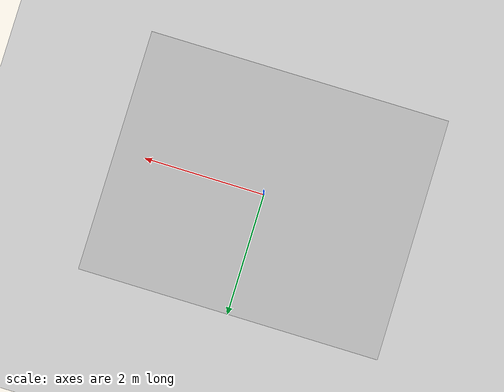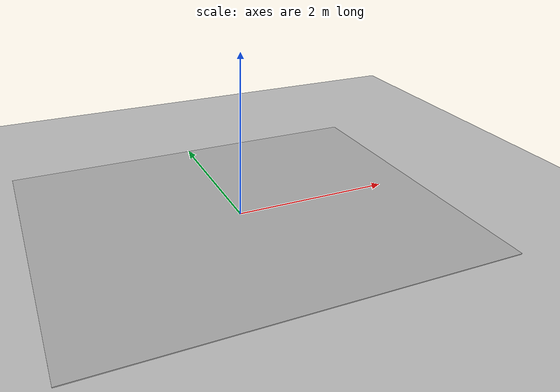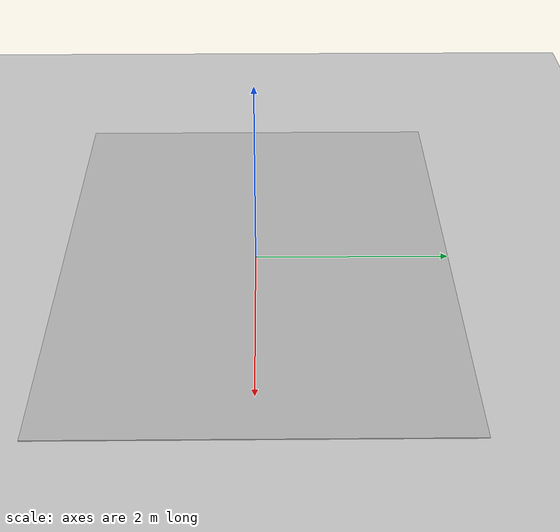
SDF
<sdf version='1.7'>
  <world name='default'>
    <plugin filename="gz-sim-physics-system" name="gz::sim::systems::Physics"/>
    <plugin filename="gz-sim-user-commands-system" name="gz::sim::systems::UserCommands"/>
    <plugin filename="gz-sim-scene-broadcaster-system" name="gz::sim::systems::SceneBroadcaster"/>
    <plugin filename="gz-sim-imu-system" name="gz::sim::systems::Imu"/>
    <plugin filename="gz-sim-sensors-system" name="gz::sim::systems::Sensors">
      <render_engine>ogre2</render_engine>
    </plugin>

    <physics name="1ms" type="ignored">
      <max_step_size>0.001</max_step_size>
      <real_time_factor>1.0</real_time_factor>
    </physics>

    <light type="directional" name="sun">
      <cast_shadows>true</cast_shadows>
      <pose>0 0 10 0 0 0</pose>
      <diffuse>0.8 0.8 0.8 1</diffuse>
      <specular>0.2 0.2 0.2 1</specular>
      <attenuation>
        <range>1000</range>
        <constant>0.9</constant>
        <linear>0.01</linear>
        <quadratic>0.001</quadratic>
      </attenuation>
      <direction>-0.5 0.1 -0.9</direction>
    </light>

    <!-- Ground plane inline (sem Fuel/internet). -->
    <model name="ground_plane">
      <static>true</static>
      <link name="link">
        <collision name="collision">
          <geometry>
            <plane>
              <normal>0 0 1</normal>
              <size>100 100</size>
            </plane>
          </geometry>
          <surface>
            <friction>
              <ode>
                <mu>100</mu>
                <mu2>50</mu2>
              </ode>
            </friction>
          </surface>
        </collision>
        <visual name="visual">
          <geometry>
            <plane>
              <normal>0 0 1</normal>
              <size>100 100</size>
            </plane>
          </geometry>
          <material>
            <ambient>0.8 0.8 0.8 1</ambient>
            <diffuse>0.8 0.8 0.8 1</diffuse>
            <specular>0.8 0.8 0.8 1</specular>
          </material>
        </visual>
      </link>
    </model>

    <include>
      <uri>model://line_follow</uri>
      <pose>0 0 0.001 0 0 0</pose>
    </include>
  </world>
</sdf>

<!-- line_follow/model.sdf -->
<sdf version="1.6">
  <model name="line_follow">
    <pose>-3.14159265359 4 0  1.57079632679 0 0</pose>
    <static>true</static>
    <link name="link">
      <collision name="collision">
        <geometry>
          <mesh>
            <uri>model://line_follow/meshes/tiny_line_follow.dae</uri>
          </mesh>
        </geometry>
      </collision>

      <visual name="visual">
        <cast_shadows>true</cast_shadows>
        <geometry>
          <mesh>
            <uri>model://line_follow/meshes/tiny_line_follow.dae</uri>
          </mesh>
        </geometry>
      </visual>

    </link>
  </model>
</sdf>
